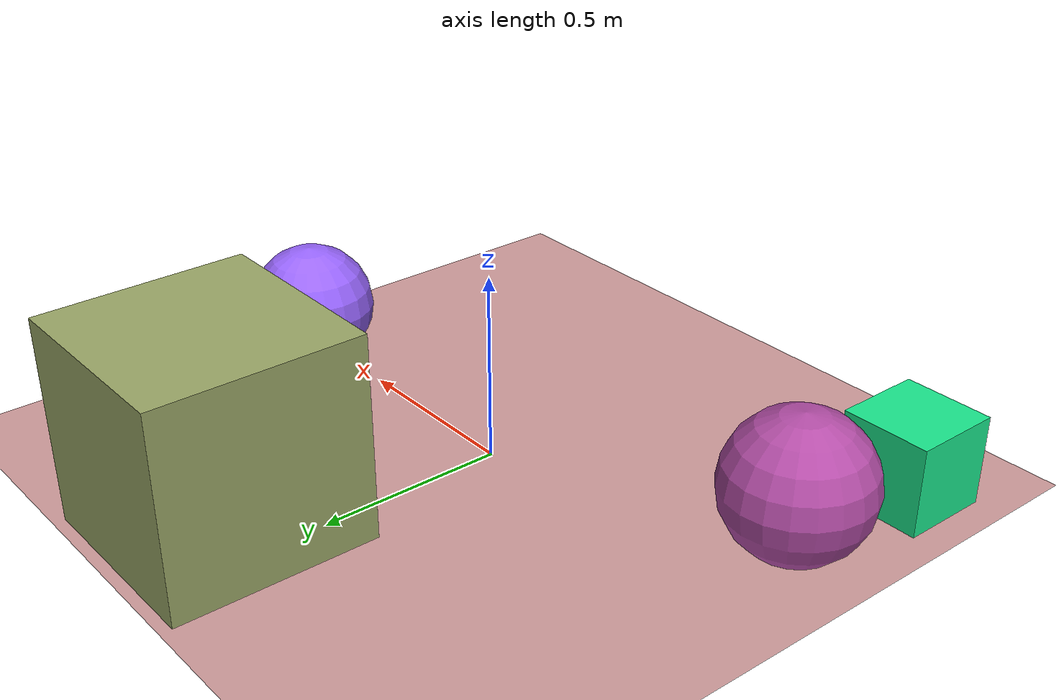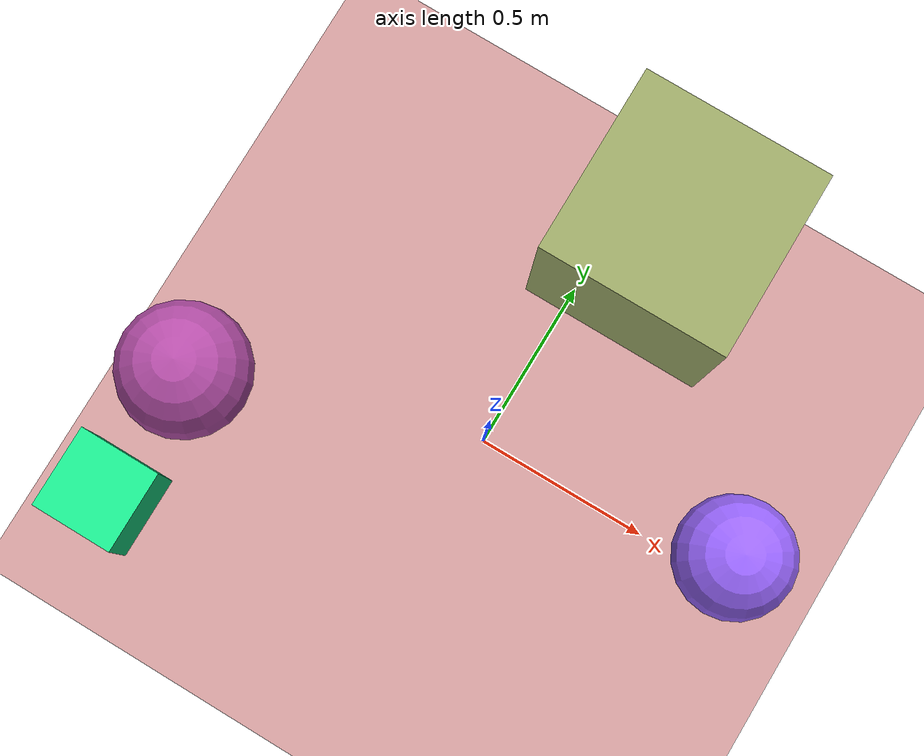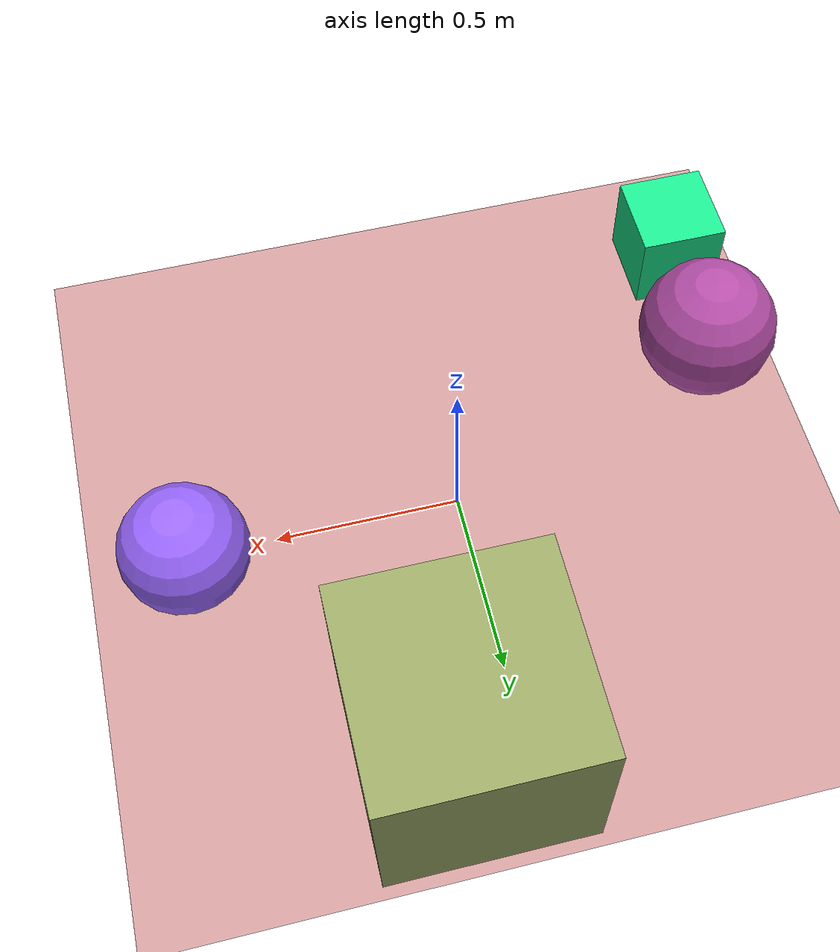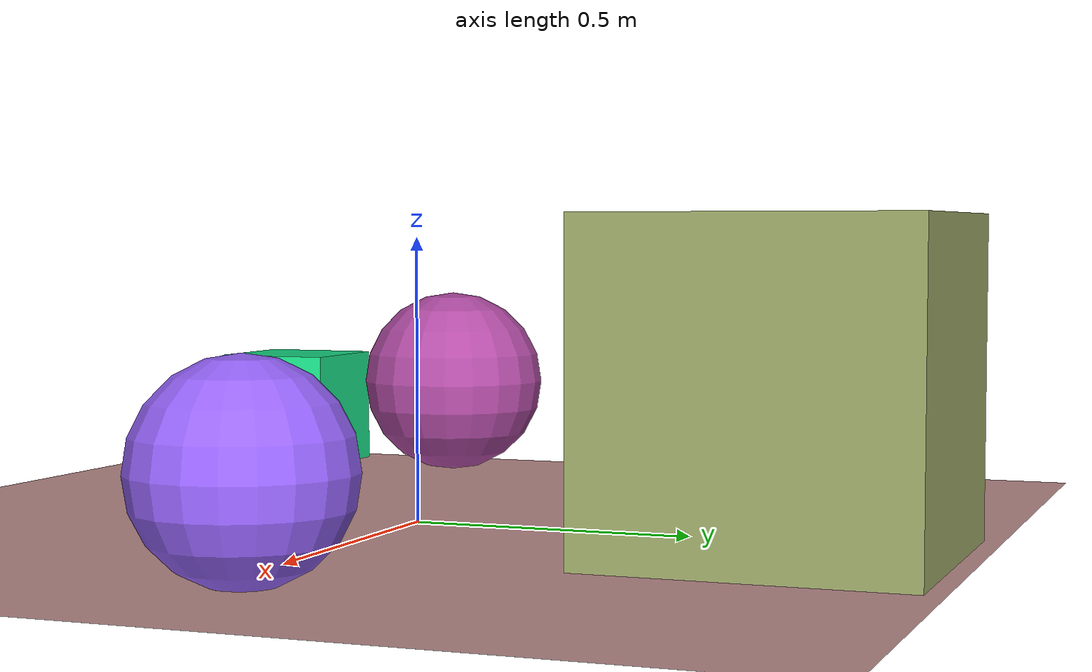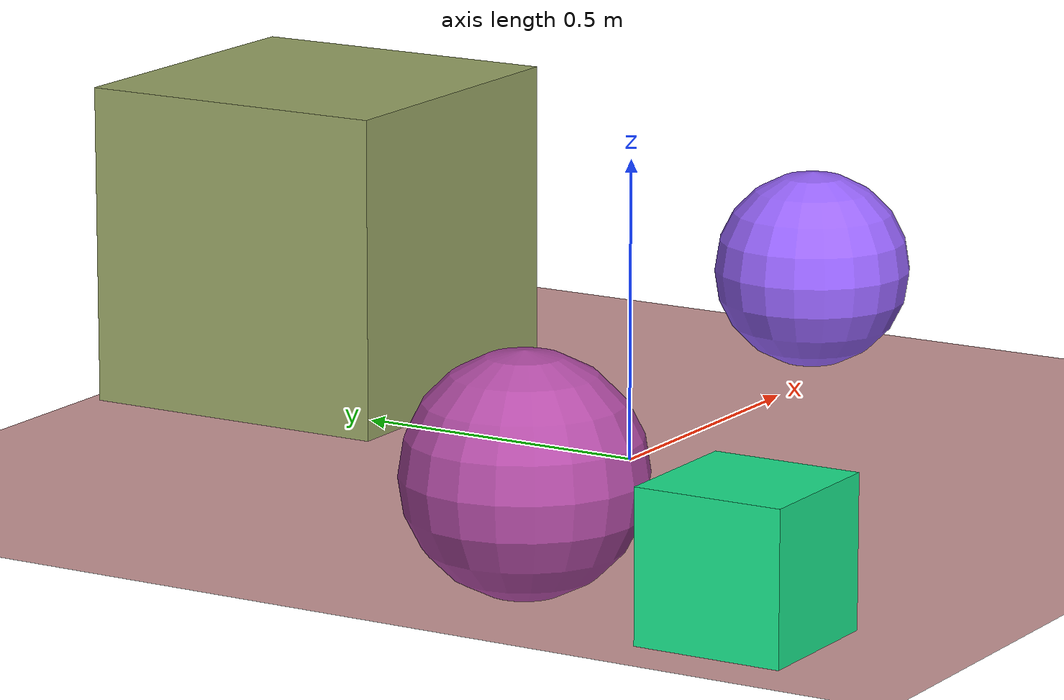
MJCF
<mujoco>
   <asset>
<texture type="skybox" builtin="gradient" rgb1="0.3 1.0 0.3" rgb2="0.2 0.7 0.8" width="256" height="256"/>
<texture name="gradient_0" builtin="gradient" rgb1="0.3 0.8 0.3" rgb2="0.9 0.5 0.5" width="200" height="200"/>
<texture name="flat_1" builtin="flat" rgb1="0.6 0.4 1.0" rgb2="0.6 0.4 1.0"  width="200" height="200"/>
<texture name="checker_2" builtin="checker" type="2d" rgb1="1.0 0.4 0.9" rgb2="0.4 0.2 0.4" width="200" height="200"/>
<texture name="gradient_3" builtin="gradient" rgb1="0.2 0.9 0.1" rgb2="0.0 0.9 1.0" width="200" height="200"/><material name="gradient_0_mat" reflectance="0" texture="gradient_0" texuniform="true"/>
<material name="flat_1_mat" reflectance="0" texture="flat_1" texuniform="true"/>
<material name="checker_2_mat" reflectance="0" texrepeat="4 4" texture="checker_2" texuniform="false" />
<material name="gradient_3_mat" reflectance="0" texture="gradient_3" texuniform="true"/>
   </asset>

   <worldbody>
      <light diffuse=".9 .9 .9" pos="0 0 3" dir="0 0 -1"/>
     <geom type="plane" size="1 1 0.1" rgba="0.8 0.6 0.6 1"/>
<geom type="box" pos="0.15 0.7 0.27" size="0.27 0.27 0.27" material="gradient_0_mat" />
<geom type="sphere" pos="0.73 0.06 0.17" size="0.17 0.17 0.17" material="flat_1_mat" />
<geom type="sphere" pos="-0.78 -0.27 0.19" size="0.19 0.19 0.19" material="checker_2_mat" />
<geom type="box" pos="-0.8 -0.66 0.12" size="0.12 0.12 0.12" material="gradient_3_mat" /><camera euler="60 0 180" fovy="60" name="camera_a" pos="0 -1.5 1"></camera>   </worldbody>
</mujoco>
